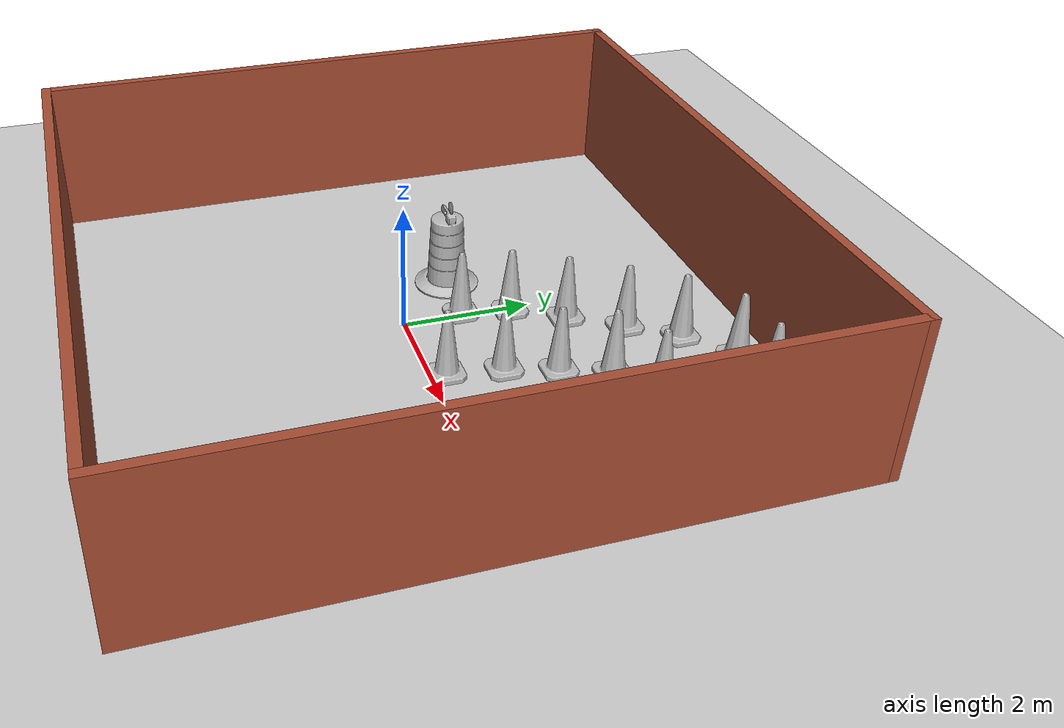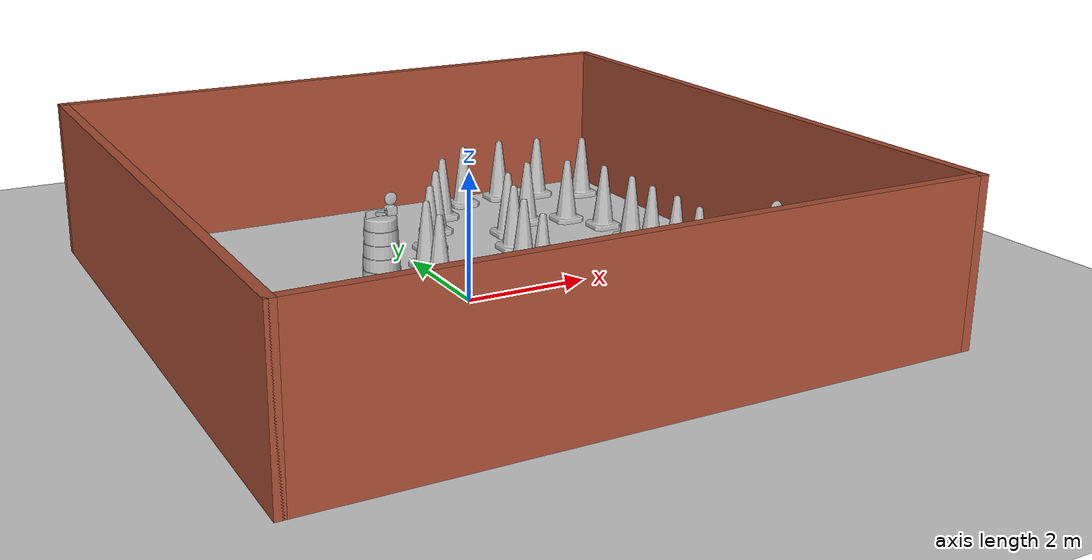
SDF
<sdf version="1.7">
 <world name="default">
  <light name="sun" type="directional">
   <pose>0 0 10 0 -0 0</pose>
   <diffuse>0.8 0.8 0.8 1</diffuse>
   <specular>0.2 0.2 0.2 1</specular>
   <attenuation>
    <range>1000</range>
    <constant>0.9</constant>
    <linear>0.01</linear>
    <quadratic>0.001</quadratic>
   </attenuation>
   <direction>-0.5 0.1 -0.9</direction>
   <spot><inner_angle>0</inner_angle><outer_angle>0</outer_angle><falloff>0</falloff></spot>
  </light>
  <model name="ground_plane">
   <static>1</static>
   <link name="link">
    <collision name="collision">
     <geometry><plane><normal>0 0 1</normal><size>100 100</size></plane></geometry>
     <surface><friction><ode><mu>100</mu><mu2>50</mu2></ode></friction></surface>
    </collision>
    <visual name="visual">
     <cast_shadows>0</cast_shadows>
     <geometry><plane><normal>0 0 1</normal><size>100 100</size></plane></geometry>
     <material>
      <script><uri>file://media/materials/scripts/gazebo.material</uri><name>Gazebo/Grey</name></script>
     </material>
    </visual>
   </link>
  </model>
  <gravity>0 0 -9.8</gravity>
  <magnetic_field>6e-06 2.3e-05 -4.2e-05</magnetic_field>
  <atmosphere type="adiabatic"/>
  <physics type="ode">
   <max_step_size>0.001</max_step_size>
   <real_time_factor>1</real_time_factor>
   <real_time_update_rate>1000</real_time_update_rate>
  </physics>
  <scene><ambient>0.4 0.4 0.4 1</ambient><background>0.7 0.7 0.7 1</background><shadows>1</shadows></scene>
  <audio><device>default</device></audio>
  <spherical_coordinates>
   <surface_model>EARTH_WGS84</surface_model>
   <latitude_deg>0</latitude_deg>
   <longitude_deg>0</longitude_deg>
   <elevation>0</elevation>
   <heading_deg>0</heading_deg>
  </spherical_coordinates>
  <model name="4_Paredes">
   <pose>0.181053 0.12709 0 0 -0 0</pose>
   <link name="Wall_0">
    <collision name="Wall_0_Collision">
     <geometry><box><size>10 0.15 2.5</size></box></geometry>
     <pose>0 0 1.25 0 -0 0</pose>
    </collision>
    <visual name="Wall_0_Visual">
     <pose>0 0 1.25 0 -0 0</pose>
     <geometry><box><size>10 0.15 2.5</size></box></geometry>
     <material>
      <script><uri>file://media/materials/scripts/gazebo.material</uri><name>Gazebo/Bricks</name></script>
      <ambient>1 1 1 1</ambient>
     </material>
     <meta><layer>0</layer></meta>
    </visual>
    <pose>0 4.925 0 0 -0 3.14159</pose>
   </link>
   <link name="Wall_2">
    <collision name="Wall_2_Collision">
     <geometry><box><size>10 0.15 2.5</size></box></geometry>
     <pose>0 0 1.25 0 -0 0</pose>
    </collision>
    <visual name="Wall_2_Visual">
     <pose>0 0 1.25 0 -0 0</pose>
     <geometry><box><size>10 0.15 2.5</size></box></geometry>
     <material>
      <script><uri>file://media/materials/scripts/gazebo.material</uri><name>Gazebo/Bricks</name></script>
      <ambient>1 1 1 1</ambient>
     </material>
     <meta><layer>0</layer></meta>
    </visual>
    <pose>-4.925 0 0 0 -0 -1.5708</pose>
   </link>
   <link name="Wall_4">
    <collision name="Wall_4_Collision">
     <geometry><box><size>10 0.15 2.5</size></box></geometry>
     <pose>0 0 1.25 0 -0 0</pose>
    </collision>
    <visual name="Wall_4_Visual">
     <pose>0 0 1.25 0 -0 0</pose>
     <geometry><box><size>10 0.15 2.5</size></box></geometry>
     <material>
      <script><uri>file://media/materials/scripts/gazebo.material</uri><name>Gazebo/Bricks</name></script>
      <ambient>1 1 1 1</ambient>
     </material>
     <meta><layer>0</layer></meta>
    </visual>
    <pose>0 -4.925 0 0 -0 0</pose>
   </link>
   <link name="Wall_5">
    <collision name="Wall_5_Collision">
     <geometry><box><size>10 0.15 2.5</size></box></geometry>
     <pose>0 0 1.25 0 -0 0</pose>
    </collision>
    <visual name="Wall_5_Visual">
     <pose>0 0 1.25 0 -0 0</pose>
     <geometry><box><size>10 0.15 2.5</size></box></geometry>
     <material>
      <script><uri>file://media/materials/scripts/gazebo.material</uri><name>Gazebo/Bricks</name></script>
      <ambient>1 1 1 1</ambient>
     </material>
     <meta><layer>0</layer></meta>
    </visual>
    <pose>4.925 0 0 0 -0 1.5708</pose>
   </link>
   <static>1</static>
  </model>
  <model name="Construction Barrel">
   <link name="link">
    <inertial>
     <pose>0 0 0.4 0 -0 0</pose>
     <mass>500</mass>
     <inertia><ixx>51.2096</ixx><iyy>51.2096</iyy><izz>25</izz><ixy>0</ixy><ixz>0</ixz><iyz>0</iyz></inertia>
    </inertial>
    <collision name="collision">
     <geometry><mesh><uri>model://construction_barrel/meshes/construction_barrel.dae</uri></mesh></geometry>
    </collision>
    <visual name="visual">
     <geometry><mesh><uri>model://construction_barrel/meshes/construction_barrel.dae</uri></mesh></geometry>
    </visual>
   </link>
   <pose>-0.995445 0.992732 0 1e-06 1e-06 -3.6e-05</pose>
  </model>
  <model name="Construction Cone">
   <link name="link">
    <collision name="collision">
     <geometry>
      <mesh><scale>10 10 10</scale><uri>model://construction_cone/meshes/construction_cone.dae</uri></mesh>
     </geometry>
    </collision>
    <visual name="visual">
     <geometry>
      <mesh><scale>10 10 10</scale><uri>model://construction_cone/meshes/construction_cone.dae</uri></mesh>
     </geometry>
    </visual>
    <inertial>
     <inertia><ixx>1</ixx><ixy>0</ixy><ixz>0</ixz><iyy>1</iyy><iyz>0</iyz><izz>1</izz></inertia>
     <mass>1</mass>
    </inertial>
   </link>
   <pose>1.52928 1.07243 -0 0 -1e-06 0</pose>
  </model>
  <model name="Construction Cone_0">
   <link name="link">
    <collision name="collision">
     <geometry>
      <mesh><scale>10 10 10</scale><uri>model://construction_cone/meshes/construction_cone.dae</uri></mesh>
     </geometry>
    </collision>
    <visual name="visual">
     <geometry>
      <mesh><scale>10 10 10</scale><uri>model://construction_cone/meshes/construction_cone.dae</uri></mesh>
     </geometry>
    </visual>
    <inertial>
     <inertia><ixx>1</ixx><ixy>0</ixy><ixz>0</ixz><iyy>1</iyy><iyz>0</iyz><izz>1</izz></inertia>
     <mass>1</mass>
    </inertial>
   </link>
   <pose>-0.042943 0.92926 -0 0 -1e-06 0</pose>
  </model>
  <model name="Construction Cone_1">
   <link name="link">
    <collision name="collision">
     <geometry>
      <mesh><scale>10 10 10</scale><uri>model://construction_cone/meshes/construction_cone.dae</uri></mesh>
     </geometry>
    </collision>
    <visual name="visual">
     <geometry>
      <mesh><scale>10 10 10</scale><uri>model://construction_cone/meshes/construction_cone.dae</uri></mesh>
     </geometry>
    </visual>
    <inertial>
     <inertia><ixx>1</ixx><ixy>0</ixy><ixz>0</ixz><iyy>1</iyy><iyz>0</iyz><izz>1</izz></inertia>
     <mass>1</mass>
    </inertial>
   </link>
   <pose>1.39865 0.245763 -0 -0 -0 -0</pose>
  </model>
  <model name="Construction Cone_2">
   <link name="link">
    <collision name="collision">
     <geometry>
      <mesh><scale>10 10 10</scale><uri>model://construction_cone/meshes/construction_cone.dae</uri></mesh>
     </geometry>
    </collision>
    <visual name="visual">
     <geometry>
      <mesh><scale>10 10 10</scale><uri>model://construction_cone/meshes/construction_cone.dae</uri></mesh>
     </geometry>
    </visual>
    <inertial>
     <inertia><ixx>1</ixx><ixy>0</ixy><ixz>0</ixz><iyy>1</iyy><iyz>0</iyz><izz>1</izz></inertia>
     <mass>1</mass>
    </inertial>
   </link>
   <pose>0.095939 1.68657 0 -0 -0 -0</pose>
  </model>
  <model name="Construction Cone_3">
   <link name="link">
    <collision name="collision">
     <geometry>
      <mesh><scale>10 10 10</scale><uri>model://construction_cone/meshes/construction_cone.dae</uri></mesh>
     </geometry>
    </collision>
    <visual name="visual">
     <geometry>
      <mesh><scale>10 10 10</scale><uri>model://construction_cone/meshes/construction_cone.dae</uri></mesh>
     </geometry>
    </visual>
    <inertial>
     <inertia><ixx>1</ixx><ixy>0</ixy><ixz>0</ixz><iyy>1</iyy><iyz>0</iyz><izz>1</izz></inertia>
     <mass>1</mass>
    </inertial>
   </link>
   <pose>0.521297 2.44334 -0 0 -1e-06 0</pose>
  </model>
  <model name="Construction Cone_4">
   <link name="link">
    <collision name="collision">
     <geometry>
      <mesh><scale>10 10 10</scale><uri>model://construction_cone/meshes/construction_cone.dae</uri></mesh>
     </geometry>
    </collision>
    <visual name="visual">
     <geometry>
      <mesh><scale>10 10 10</scale><uri>model://construction_cone/meshes/construction_cone.dae</uri></mesh>
     </geometry>
    </visual>
    <inertial>
     <inertia><ixx>1</ixx><ixy>0</ixy><ixz>0</ixz><iyy>1</iyy><iyz>0</iyz><izz>1</izz></inertia>
     <mass>1</mass>
    </inertial>
   </link>
   <pose>1.76541 1.82913 -0 0 -1e-06 0</pose>
  </model>
  <model name="Construction Cone_5">
   <link name="link">
    <collision name="collision">
     <geometry>
      <mesh><scale>10 10 10</scale><uri>model://construction_cone/meshes/construction_cone.dae</uri></mesh>
     </geometry>
    </collision>
    <visual name="visual">
     <geometry>
      <mesh><scale>10 10 10</scale><uri>model://construction_cone/meshes/construction_cone.dae</uri></mesh>
     </geometry>
    </visual>
    <inertial>
     <inertia><ixx>1</ixx><ixy>0</ixy><ixz>0</ixz><iyy>1</iyy><iyz>0</iyz><izz>1</izz></inertia>
     <mass>1</mass>
    </inertial>
   </link>
   <pose>1.00471 3.21476 -1e-05 -0 -0 -0</pose>
  </model>
  <model name="Construction Cone_6">
   <link name="link">
    <collision name="collision">
     <geometry>
      <mesh><scale>10 10 10</scale><uri>model://construction_cone/meshes/construction_cone.dae</uri></mesh>
     </geometry>
    </collision>
    <visual name="visual">
     <geometry>
      <mesh><scale>10 10 10</scale><uri>model://construction_cone/meshes/construction_cone.dae</uri></mesh>
     </geometry>
    </visual>
    <inertial>
     <inertia><ixx>1</ixx><ixy>0</ixy><ixz>0</ixz><iyy>1</iyy><iyz>0</iyz><izz>1</izz></inertia>
     <mass>1</mass>
    </inertial>
   </link>
   <pose>2.04992 2.54907 -0 0 -1e-06 0</pose>
  </model>
  <model name="Construction Cone_7">
   <link name="link">
    <collision name="collision">
     <geometry>
      <mesh><scale>10 10 10</scale><uri>model://construction_cone/meshes/construction_cone.dae</uri></mesh>
     </geometry>
    </collision>
    <visual name="visual">
     <geometry>
      <mesh><scale>10 10 10</scale><uri>model://construction_cone/meshes/construction_cone.dae</uri></mesh>
     </geometry>
    </visual>
    <inertial>
     <inertia><ixx>1</ixx><ixy>0</ixy><ixz>0</ixz><iyy>1</iyy><iyz>0</iyz><izz>1</izz></inertia>
     <mass>1</mass>
    </inertial>
   </link>
   <pose>2.68193 2.99729 -0 0 -0 0</pose>
  </model>
  <model name="Construction Cone_8">
   <link name="link">
    <collision name="collision">
     <geometry>
      <mesh><scale>10 10 10</scale><uri>model://construction_cone/meshes/construction_cone.dae</uri></mesh>
     </geometry>
    </collision>
    <visual name="visual">
     <geometry>
      <mesh><scale>10 10 10</scale><uri>model://construction_cone/meshes/construction_cone.dae</uri></mesh>
     </geometry>
    </visual>
    <inertial>
     <inertia><ixx>1</ixx><ixy>0</ixy><ixz>0</ixz><iyy>1</iyy><iyz>0</iyz><izz>1</izz></inertia>
     <mass>1</mass>
    </inertial>
   </link>
   <pose>3.37989 2.79191 -1e-06 2e-06 2e-06 0</pose>
  </model>
  <model name="Construction Cone_9">
   <link name="link">
    <collision name="collision">
     <geometry>
      <mesh><scale>10 10 10</scale><uri>model://construction_cone/meshes/construction_cone.dae</uri></mesh>
     </geometry>
    </collision>
    <visual name="visual">
     <geometry>
      <mesh><scale>10 10 10</scale><uri>model://construction_cone/meshes/construction_cone.dae</uri></mesh>
     </geometry>
    </visual>
    <inertial>
     <inertia><ixx>1</ixx><ixy>0</ixy><ixz>0</ixz><iyy>1</iyy><iyz>0</iyz><izz>1</izz></inertia>
     <mass>1</mass>
    </inertial>
   </link>
   <pose>3.75557 2.17551 -0 -0 -0 -0</pose>
  </model>
  <model name="Construction Cone_10">
   <link name="link">
    <collision name="collision">
     <geometry>
      <mesh><scale>10 10 10</scale><uri>model://construction_cone/meshes/construction_cone.dae</uri></mesh>
     </geometry>
    </collision>
    <visual name="visual">
     <geometry>
      <mesh><scale>10 10 10</scale><uri>model://construction_cone/meshes/construction_cone.dae</uri></mesh>
     </geometry>
    </visual>
    <inertial>
     <inertia><ixx>1</ixx><ixy>0</ixy><ixz>0</ixz><iyy>1</iyy><iyz>0</iyz><izz>1</izz></inertia>
     <mass>1</mass>
    </inertial>
   </link>
   <pose>1.47671 3.91637 -0 0 -1e-06 0</pose>
  </model>
  <model name="Construction Cone_11">
   <link name="link">
    <collision name="collision">
     <geometry>
      <mesh><scale>10 10 10</scale><uri>model://construction_cone/meshes/construction_cone.dae</uri></mesh>
     </geometry>
    </collision>
    <visual name="visual">
     <geometry>
      <mesh><scale>10 10 10</scale><uri>model://construction_cone/meshes/construction_cone.dae</uri></mesh>
     </geometry>
    </visual>
    <inertial>
     <inertia><ixx>1</ixx><ixy>0</ixy><ixz>0</ixz><iyy>1</iyy><iyz>0</iyz><izz>1</izz></inertia>
     <mass>1</mass>
    </inertial>
   </link>
   <pose>2.1737 4.47157 -0 0 -1e-06 0</pose>
  </model>
  <model name="Construction Cone_12">
   <link name="link">
    <collision name="collision">
     <geometry>
      <mesh><scale>10 10 10</scale><uri>model://construction_cone/meshes/construction_cone.dae</uri></mesh>
     </geometry>
    </collision>
    <visual name="visual">
     <geometry>
      <mesh><scale>10 10 10</scale><uri>model://construction_cone/meshes/construction_cone.dae</uri></mesh>
     </geometry>
    </visual>
    <inertial>
     <inertia><ixx>1</ixx><ixy>0</ixy><ixz>0</ixz><iyy>1</iyy><iyz>0</iyz><izz>1</izz></inertia>
     <mass>1</mass>
    </inertial>
   </link>
   <pose>2.96783 4.56633 -0 0 -1e-06 0</pose>
  </model>
  <model name="Construction Cone_13">
   <link name="link">
    <collision name="collision">
     <geometry>
      <mesh><scale>10 10 10</scale><uri>model://construction_cone/meshes/construction_cone.dae</uri></mesh>
     </geometry>
    </collision>
    <visual name="visual">
     <geometry>
      <mesh><scale>10 10 10</scale><uri>model://construction_cone/meshes/construction_cone.dae</uri></mesh>
     </geometry>
    </visual>
    <inertial>
     <inertia><ixx>1</ixx><ixy>0</ixy><ixz>0</ixz><iyy>1</iyy><iyz>0</iyz><izz>1</izz></inertia>
     <mass>1</mass>
    </inertial>
   </link>
   <pose>3.68777 4.4073 -0 0 -0 0</pose>
  </model>
  <model name="Construction Cone_14">
   <link name="link">
    <collision name="collision">
     <geometry>
      <mesh><scale>10 10 10</scale><uri>model://construction_cone/meshes/construction_cone.dae</uri></mesh>
     </geometry>
    </collision>
    <visual name="visual">
     <geometry>
      <mesh><scale>10 10 10</scale><uri>model://construction_cone/meshes/construction_cone.dae</uri></mesh>
     </geometry>
    </visual>
    <inertial>
     <inertia><ixx>1</ixx><ixy>0</ixy><ixz>0</ixz><iyy>1</iyy><iyz>0</iyz><izz>1</izz></inertia>
     <mass>1</mass>
    </inertial>
   </link>
   <pose>4.46413 4.06225 -0 0 -0 0</pose>
  </model>
  <model name="Construction Cone_15">
   <link name="link">
    <collision name="collision">
     <geometry>
      <mesh><scale>10 10 10</scale><uri>model://construction_cone/meshes/construction_cone.dae</uri></mesh>
     </geometry>
    </collision>
    <visual name="visual">
     <geometry>
      <mesh><scale>10 10 10</scale><uri>model://construction_cone/meshes/construction_cone.dae</uri></mesh>
     </geometry>
    </visual>
    <inertial>
     <inertia><ixx>1</ixx><ixy>0</ixy><ixz>0</ixz><iyy>1</iyy><iyz>0</iyz><izz>1</izz></inertia>
     <mass>1</mass>
    </inertial>
   </link>
   <pose>3.8054 1.38847 -0 0 -1e-06 0</pose>
  </model>
  <model name="Construction Cone_16">
   <link name="link">
    <collision name="collision">
     <geometry>
      <mesh><scale>10 10 10</scale><uri>model://construction_cone/meshes/construction_cone.dae</uri></mesh>
     </geometry>
    </collision>
    <visual name="visual">
     <geometry>
      <mesh><scale>10 10 10</scale><uri>model://construction_cone/meshes/construction_cone.dae</uri></mesh>
     </geometry>
    </visual>
    <inertial>
     <inertia><ixx>1</ixx><ixy>0</ixy><ixz>0</ixz><iyy>1</iyy><iyz>0</iyz><izz>1</izz></inertia>
     <mass>1</mass>
    </inertial>
   </link>
   <pose>3.77515 0.740507 -0 0 -1e-06 0</pose>
  </model>
  <model name="Construction Cone_17">
   <link name="link">
    <collision name="collision">
     <geometry>
      <mesh><scale>10 10 10</scale><uri>model://construction_cone/meshes/construction_cone.dae</uri></mesh>
     </geometry>
    </collision>
    <visual name="visual">
     <geometry>
      <mesh><scale>10 10 10</scale><uri>model://construction_cone/meshes/construction_cone.dae</uri></mesh>
     </geometry>
    </visual>
    <inertial>
     <inertia><ixx>1</ixx><ixy>0</ixy><ixz>0</ixz><iyy>1</iyy><iyz>0</iyz><izz>1</izz></inertia>
     <mass>1</mass>
    </inertial>
   </link>
   <pose>3.80458 0.085108 -0 0 -1e-06 0</pose>
  </model>
  <model name="Construction Cone_18">
   <link name="link">
    <collision name="collision">
     <geometry>
      <mesh><scale>10 10 10</scale><uri>model://construction_cone/meshes/construction_cone.dae</uri></mesh>
     </geometry>
    </collision>
    <visual name="visual">
     <geometry>
      <mesh><scale>10 10 10</scale><uri>model://construction_cone/meshes/construction_cone.dae</uri></mesh>
     </geometry>
    </visual>
    <inertial>
     <inertia><ixx>1</ixx><ixy>0</ixy><ixz>0</ixz><iyy>1</iyy><iyz>0</iyz><izz>1</izz></inertia>
     <mass>1</mass>
    </inertial>
   </link>
   <pose>3.75419 -0.583476 -0 0 -0 0</pose>
  </model>
  <model name="Construction Barrel_0">
   <link name="link">
    <inertial>
     <pose>0 0 0.4 0 -0 0</pose>
     <mass>500</mass>
     <inertia><ixx>51.2096</ixx><iyy>51.2096</iyy><izz>25</izz><ixy>0</ixy><ixz>0</ixz><iyz>0</iyz></inertia>
    </inertial>
    <collision name="collision">
     <geometry><mesh><uri>model://construction_barrel/meshes/construction_barrel.dae</uri></mesh></geometry>
    </collision>
    <visual name="visual">
     <geometry><mesh><uri>model://construction_barrel/meshes/construction_barrel.dae</uri></mesh></geometry>
    </visual>
   </link>
   <pose>3.85703 -2.05977 1e-06 4e-06 2e-06 -6e-06</pose>
  </model>
  <model name="Construction Cone_20">
   <link name="link">
    <collision name="collision">
     <geometry>
      <mesh><scale>10 10 10</scale><uri>model://construction_cone/meshes/construction_cone.dae</uri></mesh>
     </geometry>
    </collision>
    <visual name="visual">
     <geometry>
      <mesh><scale>10 10 10</scale><uri>model://construction_cone/meshes/construction_cone.dae</uri></mesh>
     </geometry>
    </visual>
    <inertial>
     <inertia><ixx>1</ixx><ixy>0</ixy><ixz>0</ixz><iyy>1</iyy><iyz>0</iyz><izz>1</izz></inertia>
     <mass>1</mass>
    </inertial>
   </link>
   <pose>4.67687 -2.14467 -0 0 -1e-06 0</pose>
  </model>
 </world>
</sdf>
